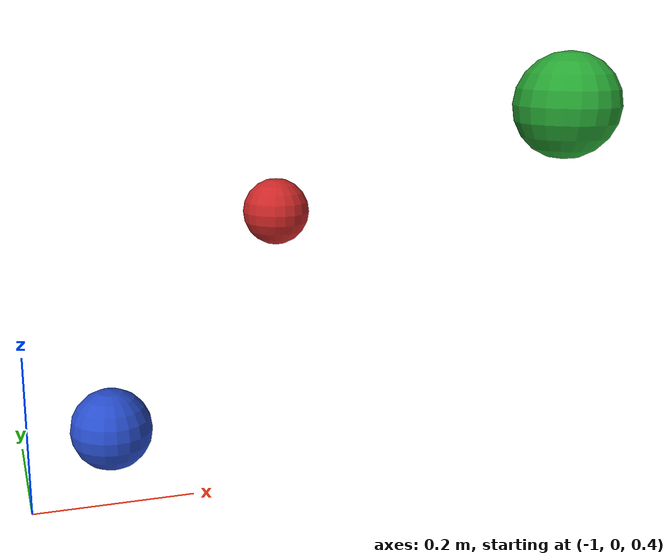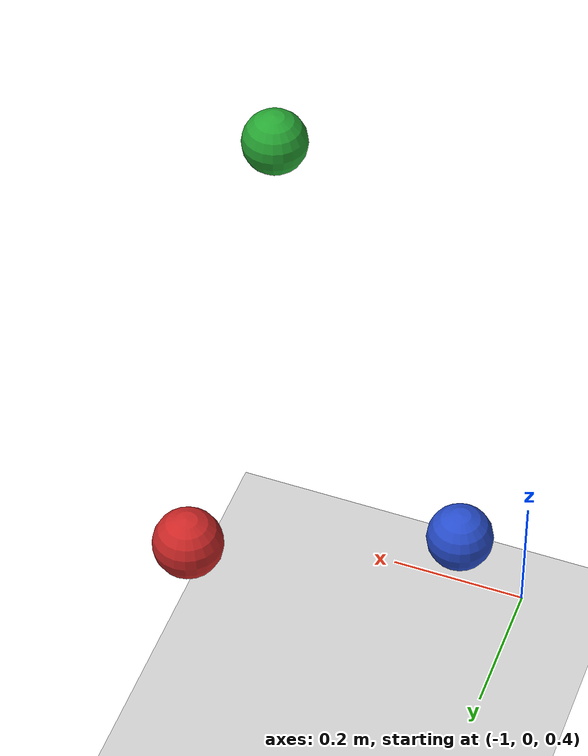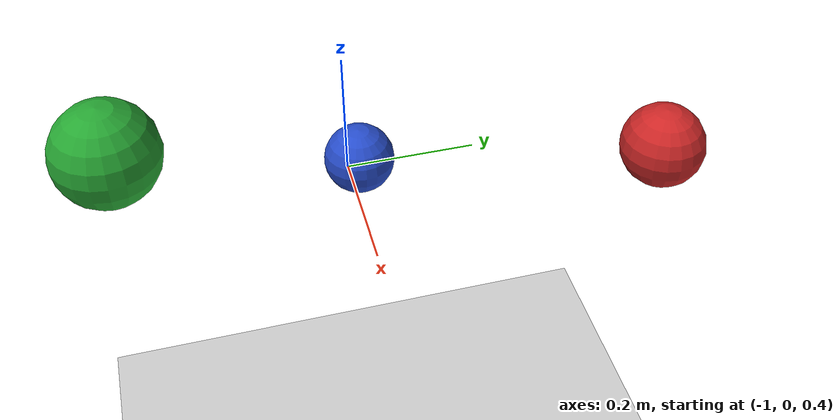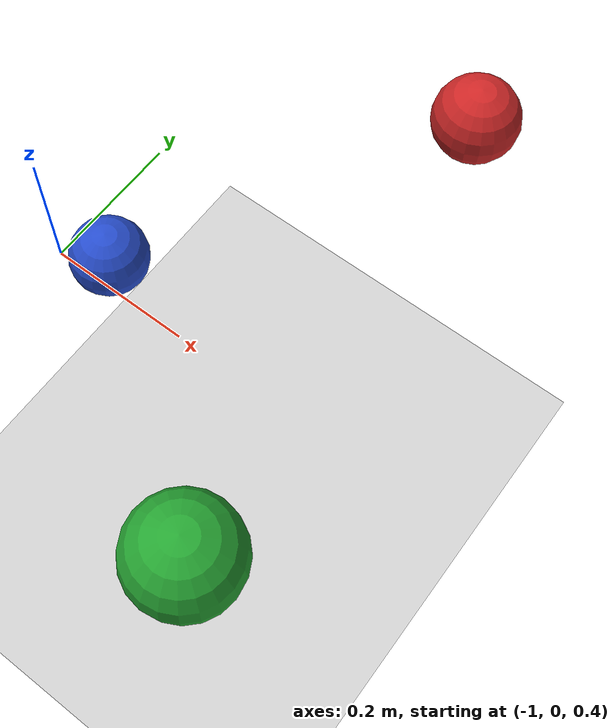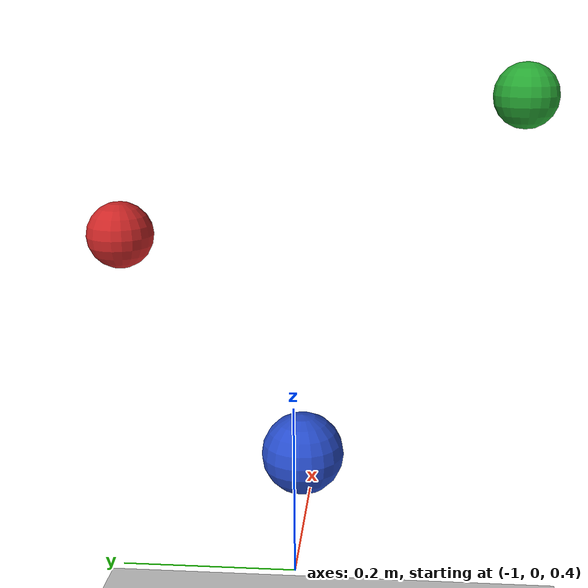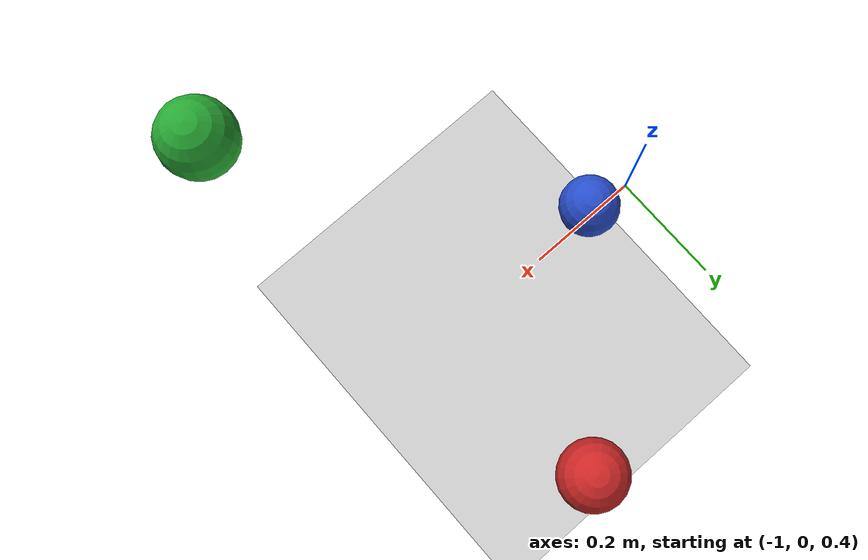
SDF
<?xml version="1.0" ?>
<sdf version="1.6">
  <world name="humanoid_arm_empty_world">

    <!-- Physics configuration for contact simulation -->
    <physics name="default_physics" default="0" type="ode">
      <real_time_factor>1</real_time_factor>
      <real_time_update_rate>1000</real_time_update_rate>
      <max_step_size>0.001</max_step_size>
      <ode>
        <solver>
          <type>quick</type>
          <iters>150</iters>
          <precon_iters>0</precon_iters>
          <sor>1.400000</sor>
          <use_dynamic_moi_rescaling>1</use_dynamic_moi_rescaling>
        </solver>
        <constraints>
          <cfm>0.00001</cfm>
          <erp>0.2</erp>
          <contact_max_correcting_vel>2000.000000</contact_max_correcting_vel>
          <contact_surface_layer>0.01000</contact_surface_layer>
        </constraints>
      </ode>
    </physics>

    <!-- Gravity -->
    <gravity>0 0 -9.81</gravity>

    <!-- Atmosphere -->
    <atmosphere type='adiabatic'/>

    <!-- Scene -->
    <scene>
      <ambient>0.4 0.4 0.4 1</ambient>
      <background>0.7 0.7 0.7 1</background>
      <shadows>true</shadows>
    </scene>

    <!-- Lighting -->
    <light type="directional" name="sun">
      <cast_shadows>true</cast_shadows>
      <pose>0 0 10 0 0 0</pose>
      <diffuse>0.8 0.8 0.8 1</diffuse>
      <specular>0.2 0.2 0.2 1</specular>
      <attenuation>
        <range>1000</range>
        <constant>0.9</constant>
        <linear>0.01</linear>
        <quadratic>0.001</quadratic>
      </attenuation>
      <direction>-0.5 0.1 -0.9</direction>
    </light>

    <!-- Ground Plane -->
    <model name="ground_plane">
      <static>true</static>
      <link name="link">
        <collision name="collision">
          <geometry>
            <plane>
              <normal>0 0 1</normal>
              <size>100 100</size>
            </plane>
          </geometry>
          <surface>
            <contact>
              <collide_bitmask>65535</collide_bitmask>
              <ode>
                <mu>0.8</mu>
                <mu2>0.8</mu2>
              </ode>
            </contact>
            <friction>
              <ode>
                <mu>0.8</mu>
                <mu2>0.8</mu2>
              </ode>
            </friction>
          </surface>
        </collision>
        <visual name="visual">
          <cast_shadows>false</cast_shadows>
          <geometry>
            <plane>
              <normal>0 0 1</normal>
              <size>100 100</size>
            </plane>
          </geometry>
          <material>
            <script>
              <uri>file://media/materials/scripts/gazebo.material</uri>
              <name>Gazebo/Grey</name>
            </script>
          </material>
        </visual>
      </link>
    </model>

    <!-- Target markers for arm positioning -->
    <model name="target_sphere_1">
      <pose>-0.6 0.3 0.7 0 0 0</pose>
      <static>true</static>
      <link name="link">
        <visual name="visual">
          <geometry>
            <sphere>
              <radius>0.05</radius>
            </sphere>
          </geometry>
          <material>
            <script>
              <uri>file://media/materials/scripts/gazebo.material</uri>
              <name>Gazebo/Red</name>
            </script>
          </material>
        </visual>
      </link>
    </model>

    <model name="target_sphere_2">
      <pose>-0.5 -0.3 0.9 0 0 0</pose>
      <static>true</static>
      <link name="link">
        <visual name="visual">
          <geometry>
            <sphere>
              <radius>0.05</radius>
            </sphere>
          </geometry>
          <material>
            <script>
              <uri>file://media/materials/scripts/gazebo.material</uri>
              <name>Gazebo/Green</name>
            </script>
          </material>
        </visual>
      </link>
    </model>

    <model name="target_sphere_3">
      <pose>-0.9 0.0 0.5 0 0 0</pose>
      <static>true</static>
      <link name="link">
        <visual name="visual">
          <geometry>
            <sphere>
              <radius>0.05</radius>
            </sphere>
          </geometry>
          <material>
            <script>
              <uri>file://media/materials/scripts/gazebo.material</uri>
              <name>Gazebo/Blue</name>
            </script>
          </material>
        </visual>
      </link>
    </model>

    <!-- GUI -->
    <gui fullscreen='0'>
      <camera name='user_camera'>
        <pose frame=''>2.5 2.5 2.5 0 0.5 -2.35</pose>
        <view_controller>orbit</view_controller>
        <projection_type>perspective</projection_type>
      </camera>
    </gui>

  </world>
</sdf>
